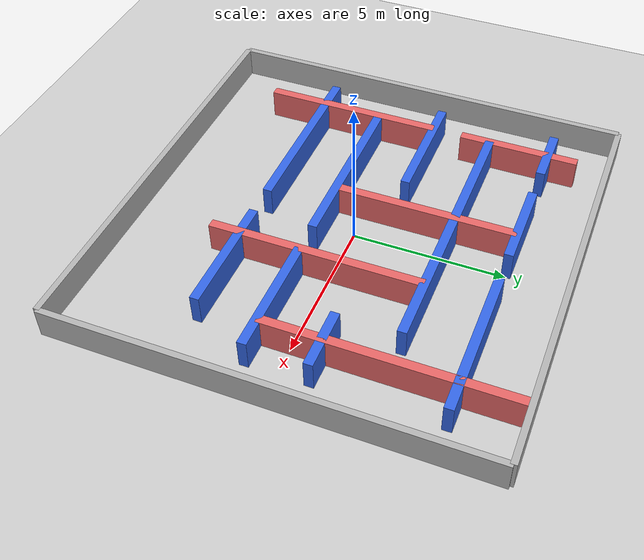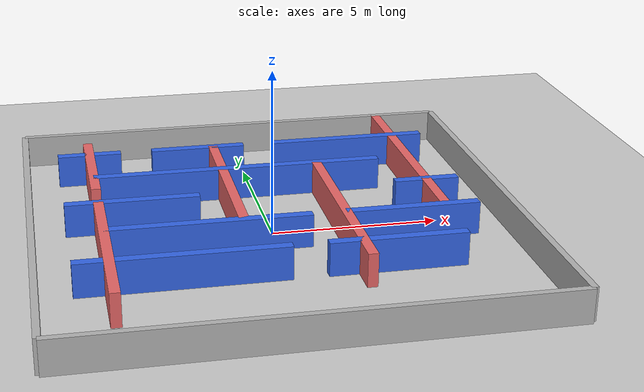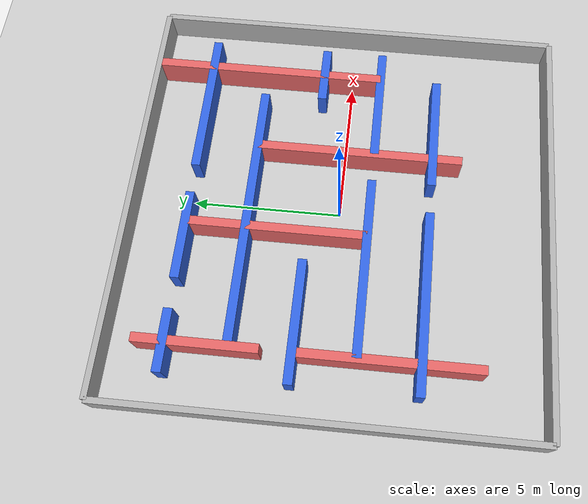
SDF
<?xml version="1.0" ?>
<sdf version="1.7">
  <world name="maze_world_2">
    <physics type="ode">
      <real_time_update_rate>1000.0</real_time_update_rate>
      <max_step_size>0.001</max_step_size>
      <real_time_factor>1</real_time_factor>
      <ode>
        <solver>
          <type>quick</type>
          <iters>150</iters>
          <precon_iters>0</precon_iters>
          <sor>1.400000</sor>
          <use_dynamic_moi_rescaling>1</use_dynamic_moi_rescaling>
        </solver>
        <constraints>
          <cfm>0.00001</cfm>
          <erp>0.2</erp>
          <contact_max_correcting_vel>2000.000000</contact_max_correcting_vel>
          <contact_surface_layer>0.01000</contact_surface_layer>
        </constraints>
      </ode>
    </physics>
    <plugin
      filename="gz-sim-physics-system"
      name="gz::sim::systems::Physics">
    </plugin>
    <plugin
      filename="gz-sim-user-commands-system"
      name="gz::sim::systems::UserCommands">
    </plugin>
    <plugin
      filename="gz-sim-scene-broadcaster-system"
      name="gz::sim::systems::SceneBroadcaster">
    </plugin>
    <plugin
      filename="gz-sim-sensors-system"
      name="gz::sim::systems::Sensors">
      <render_engine>ogre2</render_engine>
    </plugin>
    <plugin
      filename="gz-sim-imu-system"
      name="gz::sim::systems::Imu">
    </plugin>

    <include>
      <uri>https://fuel.gazebosim.org/1.0/OpenRobotics/models/Ground Plane</uri>
    </include>

    <include>
      <uri>https://fuel.gazebosim.org/1.0/OpenRobotics/models/Sun</uri>
    </include>

    <!-- Outer box 14 x 14 -->
    <model name="outer_wall_north">
      <static>true</static>
      <pose>0 7 0.5 0 0 0</pose>
      <link name="link">
        <collision name="collision"><geometry><box><size>14 0.2 1</size></box></geometry></collision>
        <visual name="visual">
          <geometry><box><size>14 0.2 1</size></box></geometry>
          <material><ambient>0.7 0.7 0.7 1</ambient></material>
        </visual>
      </link>
    </model>
    <model name="outer_wall_south">
      <static>true</static>
      <pose>0 -7 0.5 0 0 0</pose>
      <link name="link">
        <collision name="collision"><geometry><box><size>14 0.2 1</size></box></geometry></collision>
        <visual name="visual">
          <geometry><box><size>14 0.2 1</size></box></geometry>
          <material><ambient>0.7 0.7 0.7 1</ambient></material>
        </visual>
      </link>
    </model>
    <model name="outer_wall_east">
      <static>true</static>
      <pose>7 0 0.5 0 0 0</pose>
      <link name="link">
        <collision name="collision"><geometry><box><size>0.2 14 1</size></box></geometry></collision>
        <visual name="visual">
          <geometry><box><size>0.2 14 1</size></box></geometry>
          <material><ambient>0.7 0.7 0.7 1</ambient></material>
        </visual>
      </link>
    </model>
    <model name="outer_wall_west">
      <static>true</static>
      <pose>-7 0 0.5 0 0 0</pose>
      <link name="link">
        <collision name="collision"><geometry><box><size>0.2 14 1</size></box></geometry></collision>
        <visual name="visual">
          <geometry><box><size>0.2 14 1</size></box></geometry>
          <material><ambient>0.7 0.7 0.7 1</ambient></material>
        </visual>
      </link>
    </model>

    <!-- Horizontal rows -->
    <model name="row1_left">
      <static>true</static>
      <pose>-5 5 0.5 0 0 0</pose>
      <link name="link">
        <collision name="collision"><geometry><box><size>2 0.3 1</size></box></geometry></collision>
        <visual name="visual">
          <geometry><box><size>2 0.3 1</size></box></geometry>
          <material><ambient>0.2 0.4 0.9 1</ambient></material>
        </visual>
      </link>
    </model>
        <model name="row1_center">
      <static>true</static>
      <pose>-1.5 5 0.5 0 0 0</pose>
      <link name="link">
        <collision name="collision"><geometry><box><size>3 0.3 1</size></box></geometry></collision>
        <visual name="visual">
          <geometry><box><size>3 0.3 1</size></box></geometry>
          <material><ambient>0.2 0.4 0.9 1</ambient></material>
        </visual>
      </link>
    </model>
    <model name="row1_right">
      <static>true</static>
      <pose>3.5 5 0.5 0 0 0</pose>
      <link name="link">
        <collision name="collision"><geometry><box><size>5 0.3 1</size></box></geometry></collision>
        <visual name="visual">
          <geometry><box><size>5 0.3 1</size></box></geometry>
          <material><ambient>0.2 0.4 0.9 1</ambient></material>
        </visual>
      </link>
    </model>
    <model name="row2_center">
      <static>true</static>
      <pose>-0.5 3 0.5 0 0 0</pose>
      <link name="link">
        <collision name="collision"><geometry><box><size>9 0.3 1</size></box></geometry></collision>
        <visual name="visual">
          <geometry><box><size>9 0.3 1</size></box></geometry>
          <material><ambient>0.2 0.4 0.9 1</ambient></material>
        </visual>
      </link>
    </model>
    <model name="row3_left">
      <static>true</static>
      <pose>-4 1 0.5 0 0 0</pose>
      <link name="link">
        <collision name="collision"><geometry><box><size>4 0.3 1</size></box></geometry></collision>
        <visual name="visual">
          <geometry><box><size>4 0.3 1</size></box></geometry>
          <material><ambient>0.2 0.4 0.9 1</ambient></material>
        </visual>
      </link>
    </model>
    <model name="row3_right">
      <static>true</static>
      <pose>5 1 0.5 0 0 0</pose>
      <link name="link">
        <collision name="collision"><geometry><box><size>2 0.3 1</size></box></geometry></collision>
        <visual name="visual">
          <geometry><box><size>2 0.3 1</size></box></geometry>
          <material><ambient>0.2 0.4 0.9 1</ambient></material>
        </visual>
      </link>
    </model>
    <model name="row4_left">
      <static>true</static>
      <pose>-2 -1 0.5 0 0 0</pose>
      <link name="link">
        <collision name="collision"><geometry><box><size>6 0.3 1</size></box></geometry></collision>
        <visual name="visual">
          <geometry><box><size>6 0.3 1</size></box></geometry>
          <material><ambient>0.2 0.4 0.9 1</ambient></material>
        </visual>
      </link>
    </model>
    <model name="row4_right">
      <static>true</static>
      <pose>4 -1 0.5 0 0 0</pose>
      <link name="link">
        <collision name="collision"><geometry><box><size>4 0.3 1</size></box></geometry></collision>
        <visual name="visual">
          <geometry><box><size>4 0.3 1</size></box></geometry>
          <material><ambient>0.2 0.4 0.9 1</ambient></material>
        </visual>
      </link>
    </model>
    <model name="row5_left">
      <static>true</static>
      <pose>-3 -3 0.5 0 0 0</pose>
      <link name="link">
        <collision name="collision"><geometry><box><size>6 0.3 1</size></box></geometry></collision>
        <visual name="visual">
          <geometry><box><size>6 0.3 1</size></box></geometry>
          <material><ambient>0.2 0.4 0.9 1</ambient></material>
        </visual>
      </link>
    </model>
    <model name="row5_right">
      <static>true</static>
      <pose>3 -3 0.5 0 0 0</pose>
      <link name="link">
        <collision name="collision"><geometry><box><size>4 0.3 1</size></box></geometry></collision>
        <visual name="visual">
          <geometry><box><size>4 0.3 1</size></box></geometry>
          <material><ambient>0.2 0.4 0.9 1</ambient></material>
        </visual>
      </link>
    </model>

    <!-- Vertical connectors-->
    <model name="col1_upper">
      <static>true</static>
      <pose>-5 4 0.5 0 0 0</pose>
      <link name="link">
        <collision name="collision"><geometry><box><size>0.3 4 1</size></box></geometry></collision>
        <visual name="visual">
          <geometry><box><size>0.3 4 1</size></box></geometry>
          <material><ambient>0.9 0.4 0.4 1</ambient></material>
        </visual>
      </link>
    </model>
    <model name="col1_lower">
      <static>true</static>
      <pose>-5 -2 0.5 0 0 0</pose>
      <link name="link">
        <collision name="collision"><geometry><box><size>0.3 6 1</size></box></geometry></collision>
        <visual name="visual">
          <geometry><box><size>0.3 6 1</size></box></geometry>
          <material><ambient>0.9 0.4 0.4 1</ambient></material>
        </visual>
      </link>
    </model>
    <model name="col2_center">
      <static>true</static>
      <pose>-1 2 0.5 0 0 0</pose>
      <link name="link">
        <collision name="collision"><geometry><box><size>0.3 6 1</size></box></geometry></collision>
        <visual name="visual">
          <geometry><box><size>0.3 6 1</size></box></geometry>
          <material><ambient>0.9 0.4 0.4 1</ambient></material>
        </visual>
      </link>
    </model>
    <model name="col3_center">
      <static>true</static>
      <pose>2 -0.5 0.5 0 0 0</pose>
      <link name="link">
        <collision name="collision"><geometry><box><size>0.3 7 1</size></box></geometry></collision>
        <visual name="visual">
          <geometry><box><size>0.3 7 1</size></box></geometry>
          <material><ambient>0.9 0.4 0.4 1</ambient></material>
        </visual>
      </link>
    </model>
    <model name="col4_right">
      <static>true</static>
      <pose>5 3 0.5 0 0 0</pose>
      <link name="link">
        <collision name="collision"><geometry><box><size>0.3 8 1</size></box></geometry></collision>
        <visual name="visual">
          <geometry><box><size>0.3 8 1</size></box></geometry>
          <material><ambient>0.9 0.4 0.4 1</ambient></material>
        </visual>
      </link>
    </model>
  </world>
</sdf>
